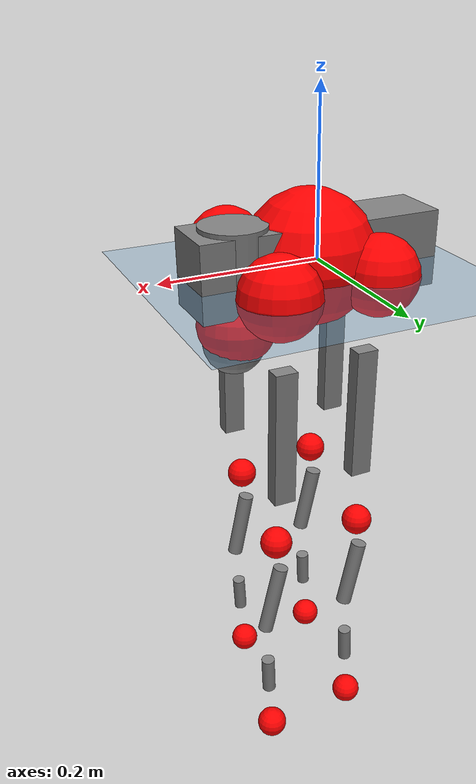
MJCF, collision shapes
<mujoco model="go2">
  <compiler angle="radian" assetdir="assets" balanceinertia="true" inertiafromgeom="false"/>

  <option timestep="0.005" density="1.2" viscosity="2e-05"/>

  <size nkey="1"/>

  <visual>
    <quality shadowsize="8192"/>
    <map shadowclip="0.5"/>
  </visual>

  <default>
    <default class="/">
      <geom contype="0" conaffinity="0" group="1" solref="-1000 -80"/>
      <site size="0.01 0.005 0.005" group="5"/>
      <general forcelimited="true" biastype="affine" gainprm="20" biasprm="0 -20 -0.5"/>
      <default class="go2">
        <joint armature="0.01" damping="0.01" frictionloss="0.2"/>
        <geom condim="1" margin="0.001"/>
        <default class="visual">
          <geom type="mesh" group="2"/>
        </default>
        <default class="collision">
          <geom group="3"/>
          <default class="foot">
            <geom size="0.022 0 0" condim="6" priority="1" friction="0.8 0.02 0.01" solimp="0.015 1 0.022"/>
          </default>
        </default>
        <default class="reward_collision_sphere">
          <geom group="5" rgba="1 0 0 1"/>
        </default>
      </default>
    </default>
  </default>

  <asset>
    <texture type="skybox" colorspace="auto" name="//unnamed_texture_0" builtin="gradient" rgb1="0.95 0.95 0.95" rgb2="0.95 0.95 0.95" width="100" height="600"/>
    <texture type="2d" colorspace="auto" name="texplane" builtin="checker" rgb1="0.345 0.575 0.748" rgb2="0.345 0.575 0.748" markrgb="1 1 1" width="512" height="512"/>
    <material name="MatPlane" class="/" texture="texplane" texuniform="true" texrepeat="2 2" specular="0.9"/>
    <material name="metal" class="/" rgba="0.9 0.95 0.95 1"/>
    <material name="black" class="/" rgba="0 0 0 1"/>
    <material name="white" class="/"/>
    <material name="gray" class="/" rgba="0.671705 0.692426 0.77427 1"/>
    <mesh name="base_0" class="/" file="base_0.obj"/>
    <mesh name="base_1" class="/" file="base_1.obj"/>
    <mesh name="base_2" class="/" file="base_2.obj"/>
    <mesh name="base_3" class="/" file="base_3.obj"/>
    <mesh name="base_4" class="/" file="base_4.obj"/>
    <mesh name="hip_0" class="/" file="hip_0.obj"/>
    <mesh name="hip_1" class="/" file="hip_1.obj"/>
    <mesh name="thigh_0" class="/" file="thigh_0.obj"/>
    <mesh name="thigh_1" class="/" file="thigh_1.obj"/>
    <mesh name="thigh_mirror_0" class="/" file="thigh_mirror_0.obj"/>
    <mesh name="thigh_mirror_1" class="/" file="thigh_mirror_1.obj"/>
    <mesh name="calf_0" class="/" file="calf_0.obj"/>
    <mesh name="calf_1" class="/" file="calf_1.obj"/>
    <mesh name="calf_mirror_0" class="/" file="calf_mirror_0.obj"/>
    <mesh name="calf_mirror_1" class="/" file="calf_mirror_1.obj"/>
    <mesh name="foot" class="/" file="foot.obj"/>
  </asset>

  <worldbody>
    <geom name="floor" class="/" size="100 100 0.125" type="plane" group="0" material="MatPlane"/>
    <light name="toplight_shadow" class="/" pos="0 0 5" dir="0.0990148 0.0990148 -0.990148" type="directional" ambient="0.04 0.04 0.04" diffuse="0.55 0.55 0.55" specular="0.12 0.12 0.12"/>
    <light name="toplight_fill" class="/" pos="0 0 5" dir="0.0990148 0.0990148 -0.990148" type="directional" castshadow="false" ambient="0.04 0.04 0.04" diffuse="0.3 0.3 0.3" specular="0.08 0.08 0.08"/>
    <body name="trunk" childclass="go2" pos="0.0178856 0.0136846 0.00976025" quat="0.999971 -0.00206042 -0.000549801 0.00731962">
      <inertial pos="0.0256899 0.00494771 -0.00367727" quat="-0.0322562 0.709834 -0.0378696 0.70261" mass="3.28275" diaginertia="0.000534739 0.00622091 0.144783"/>
      <joint name="//unnamed_joint_0" type="free" armature="0" damping="0" frictionloss="0"/>
      <geom name="//unnamed_geom_1" class="visual" material="black" mesh="base_0"/>
      <geom name="//unnamed_geom_2" class="visual" material="black" mesh="base_1"/>
      <geom name="//unnamed_geom_3" class="visual" material="black" mesh="base_2"/>
      <geom name="//unnamed_geom_4" class="visual" material="white" mesh="base_3"/>
      <geom name="//unnamed_geom_5" class="visual" material="gray" mesh="base_4"/>
      <geom name="trunk_1" class="collision" size="0.150353 0.0373684 0.0455615" type="box"/>
      <geom name="trunk_2" class="collision" size="0.0399662 0.0359696" pos="0.096056 0 0.0148204" type="cylinder"/>
      <geom name="trunk_3" class="collision" size="0.0375683" pos="0.0987523 0 -0.0889223"/>
      <geom name="//unnamed_geom_9" class="reward_collision_sphere" size="0.0799325"/>
      <geom name="//unnamed_geom_10" class="reward_collision_sphere" size="0.0479595" pos="0.0943708 0 -0.0666918"/>
      <site name="imu" pos="-0.0275565 -0.046969 0.103498" size="0.00799325"/>
      <camera name="track" pos="0 -1.15779 0" quat="0.707107 0.707107 0 0" mode="trackcom"/>
      <camera name="ego_camera" pos="0.105156 0 0.0666918" quat="-0.5 -0.5 0.5 0.5"/>
      <body name="FL_hip" pos="0.0777098 0.0397243 -0.00984979" quat="0.99996 0.003651 -0.00815701 -0.000210382">
        <inertial pos="0.0170023 0.0126044 0.0114411" quat="0.494762 0.482506 0.510217 0.511935" mass="0.296489" diaginertia="3.31042e-06 3.75479e-05 0.00233483"/>
        <joint name="FL_hip_joint" pos="0 0 0" axis="0.99949 -0.0102272 0.0302386" stiffness="0.0454173" range="-0.954307 1.36873" armature="0.00215934" damping="0.074039" frictionloss="0.0786752"/>
        <geom name="//unnamed_geom_11" class="visual" material="metal" mesh="hip_0"/>
        <geom name="//unnamed_geom_12" class="visual" material="gray" mesh="hip_1"/>
        <geom name="//unnamed_geom_13" class="collision" size="0.0367689 0.0159865" pos="0 0.0463117 0" quat="0.707107 0.707107 0 0" type="cylinder"/>
        <geom name="//unnamed_geom_14" class="reward_collision_sphere" size="0.0479595" pos="0 0.0405228 0"/>
        <body name="FL_thigh" pos="-0.000721478 0.0489933 -0.00953067" quat="0.999998 0.000975674 -0.00080164 0.00123438">
          <inertial pos="-0.0190968 -0.0181379 -0.0650669" quat="0.836947 0.0903473 -0.0377235 0.538455" mass="0.62445" diaginertia="2.66375e-05 0.000330034 0.00680724"/>
          <joint name="FL_thigh_joint" pos="0 0 0" axis="-0.0535246 0.998553 0.00527673" range="-1.26469 3.19844" armature="0.00254461" damping="0.0979551" frictionloss="0.0711204"/>
          <geom name="//unnamed_geom_15" class="visual" material="metal" mesh="thigh_0"/>
          <geom name="//unnamed_geom_16" class="visual" material="gray" mesh="thigh_1"/>
          <geom name="//unnamed_geom_17" class="collision" size="0.0851281 0.00979173 0.0135885" pos="0 0 -0.157837" quat="0.707107 0 0.707107 0" type="box"/>
          <body name="FL_calf" pos="0.00286206 -0.00728456 -0.310928" quat="0.999979 -0.00121441 -0.00631768 -0.0010701">
            <inertial pos="-0.0101369 -0.0118055 -0.19524" quat="0.738293 0.0678206 -0.0259678 0.670559" mass="0.109328" diaginertia="7.12504e-06 8.09128e-05 0.000437975"/>
            <joint name="FL_calf_joint" pos="0 0 0" axis="-0.0366918 0.999307 -0.00625744" range="-2.6228 -0.523718" armature="0.0132637" damping="0.00354297" frictionloss="0.208113"/>
            <geom name="//unnamed_geom_18" class="visual" material="gray" mesh="calf_0"/>
            <geom name="//unnamed_geom_19" class="visual" material="black" mesh="calf_1"/>
            <geom name="FL_calf0" class="collision" size="0.0095919 0.0479595" pos="0.00269631 0 -0.0889223" quat="0.994493 0 -0.104807 0" type="cylinder"/>
            <geom name="//unnamed_geom_21" class="collision" size="0.00879257 0.0259781" pos="0.00674077 0 -0.219342" quat="0.999688 0 0.0249974 0" type="cylinder"/>
            <geom name="//unnamed_geom_22" class="visual" pos="0 0 -0.315674" quat="1 0 0 0" material="black" mesh="foot"/>
            <geom name="FL_foot" class="foot" size="0.0125274" pos="-0.000674077 0 -0.315674"/>
            <geom name="//unnamed_geom_24" class="reward_collision_sphere" size="0.0199831"/>
            <geom name="//unnamed_geom_25" class="reward_collision_sphere" size="0.0199831" pos="-0.000674077 0 -0.315674"/>
            <site name="FL_foot" class="foot" pos="-0.000674077 0 -0.315674" size="0.00799325"/>
          </body>
        </body>
      </body>
      <body name="FR_hip" pos="0.0684799 -0.0427427 -0.00230329" quat="0.999986 -0.0039324 0.00264126 0.00250058">
        <inertial pos="-0.0167498 -0.00925275 -0.000441735" quat="0.515169 0.492769 0.497288 0.494454" mass="0.215726" diaginertia="3.44213e-06 3.50952e-05 0.00330363"/>
        <joint name="FR_hip_joint" pos="0 0 0" axis="0.999926 -0.00409606 0.011487" stiffness="0.0355526" range="-1.28698 0.978993" armature="0.0156069" damping="0.0261748" frictionloss="0.0152974"/>
        <geom name="//unnamed_geom_26" class="visual" pos="0 -7.8678e-09 -3.37466e-07" quat="4.63268e-05 1 0 0" material="metal" mesh="hip_0"/>
        <geom name="//unnamed_geom_27" class="visual" pos="0 -1.27546e-08 8.34683e-07" quat="4.63268e-05 1 0 0" material="gray" mesh="hip_1"/>
        <geom name="//unnamed_geom_28" class="collision" size="0.0367689 0.0159865" pos="0 -0.0463117 0" quat="0.707107 0.707107 0 0" type="cylinder"/>
        <geom name="//unnamed_geom_29" class="reward_collision_sphere" size="0.0479595" pos="0 -0.0405228 0"/>
        <body name="FR_thigh" pos="-0.00440581 -0.0470185 -0.0164747" quat="0.999962 -0.000830794 -0.00699961 -0.0051886">
          <inertial pos="0.0127179 0.0315187 -0.0401369" quat="0.534787 -0.0363807 0.101843 0.838038" mass="0.812948" diaginertia="2.78784e-05 0.000479208 0.00834866"/>
          <joint name="FR_thigh_joint" pos="0 0 0" axis="-0.0251763 -0.999464 0.0209343" stiffness="0.025665" range="-3.32018 1.76128" armature="0.00878462" damping="0.0153774" frictionloss="0.078164"/>
          <geom name="//unnamed_geom_30" class="visual" material="metal" mesh="thigh_mirror_0"/>
          <geom name="//unnamed_geom_31" class="visual" material="gray" mesh="thigh_mirror_1"/>
          <geom name="//unnamed_geom_32" class="collision" size="0.0851281 0.00979173 0.0135885" pos="0 0 -0.157837" quat="0.707107 0 0.707107 0" type="box"/>
          <body name="FR_calf" pos="-0.0132417 0.000503898 -0.319491" quat="1 -0.000113177 0.000118765 0.000747984">
            <inertial pos="-0.00933053 0.00215945 -0.201347" quat="0.720099 -0.0232875 0.00123224 0.69348" mass="0.0894258" diaginertia="4.18908e-06 9.01979e-05 0.000290293"/>
            <joint name="FR_calf_joint" pos="0 0 0" axis="0.0751567 -0.997167 0.0029635" stiffness="0.0612738" range="0.798702 2.83359" armature="0.00622243" damping="0" frictionloss="0.0971674"/>
            <geom name="//unnamed_geom_33" class="visual" material="gray" mesh="calf_mirror_0"/>
            <geom name="//unnamed_geom_34" class="visual" material="black" mesh="calf_mirror_1"/>
            <geom name="FR_calf0" class="collision" size="0.0103912 0.0479595" pos="0.00337039 0 -0.0889223" quat="0.995004 0 -0.0998334 0" type="cylinder"/>
            <geom name="//unnamed_geom_36" class="collision" size="0.00879257 0.0259781" pos="0.00674077 0 -0.219342" quat="0.999688 0 0.0249974 0" type="cylinder"/>
            <geom name="//unnamed_geom_37" class="visual" pos="0 0 -0.315674" quat="1 0 0 0" material="black" mesh="foot"/>
            <geom name="FR_foot" class="foot" size="0.0174585" pos="-0.000674077 0 -0.315674"/>
            <geom name="//unnamed_geom_39" class="reward_collision_sphere" size="0.0199831"/>
            <geom name="//unnamed_geom_40" class="reward_collision_sphere" size="0.0199831" pos="-0.000674077 0 -0.315674"/>
            <site name="FR_foot" class="foot" pos="-0.000674077 0 -0.315674" size="0.00799325"/>
          </body>
        </body>
      </body>
      <body name="RL_hip" pos="-0.0585694 0.020233 -0.0121112" quat="0.999952 -0.00179915 -0.00963943 -0.000535707">
        <inertial pos="-0.0161047 0.00831843 -0.00542434" quat="0.508448 0.498558 0.495092 0.4978" mass="0.296973" diaginertia="3.5987e-06 3.01617e-05 0.00356702"/>
        <joint name="RL_hip_joint" pos="0 0 0" axis="-0.999326 0.0354692 0.00943252" range="-0.912065 0.929698" armature="0.00760996" damping="0.00805952" frictionloss="0.0826445"/>
        <geom name="//unnamed_geom_41" class="visual" pos="9.97477e-09 0 1.95528e-06" quat="4.63268e-05 0 1 0" material="metal" mesh="hip_0"/>
        <geom name="//unnamed_geom_42" class="visual" pos="1.61703e-08 0 1.73406e-06" quat="4.63268e-05 0 1 0" material="gray" mesh="hip_1"/>
        <geom name="//unnamed_geom_43" class="collision" size="0.0367689 0.0159865" pos="0 0.0463117 0" quat="0.707107 0.707107 0 0" type="cylinder"/>
        <geom name="//unnamed_geom_44" class="reward_collision_sphere" size="0.0479595" pos="0 0.0405228 0"/>
        <body name="RL_thigh" pos="0.0172738 0.0450405 -0.0141174" quat="0.999962 0.00300469 0.00422064 0.00700766">
          <inertial pos="0.00232749 -0.00612807 -0.0416976" quat="0.870582 0.0635208 0.000347039 0.487905" mass="0.709449" diaginertia="2.33786e-05 0.000454021 0.00562422"/>
          <joint name="RL_thigh_joint" pos="0 0 0" axis="-0.00397553 0.999955 0.00856819" range="-0.401941 4.59984" armature="0.0126317" damping="0.098442" frictionloss="0.233603"/>
          <geom name="//unnamed_geom_45" class="visual" material="metal" mesh="thigh_0"/>
          <geom name="//unnamed_geom_46" class="visual" material="gray" mesh="thigh_1"/>
          <geom name="//unnamed_geom_47" class="collision" size="0.0851281 0.00979173 0.0135885" pos="0 0 -0.157837" quat="0.707107 0 0.707107 0" type="box"/>
          <body name="RL_calf" pos="-0.00880423 -0.00641102 -0.32667" quat="0.999999 -0.000741851 -0.0011817 0.000946417">
            <inertial pos="0.00304397 0.00182935 -0.22166" quat="0.708578 0.00843468 0.00108502 0.705582" mass="0.124051" diaginertia="6.44913e-06 8.72429e-05 0.000387469"/>
            <joint name="RL_calf_joint" pos="0 0 0" axis="-0.00024164 0.999922 -0.012491" stiffness="0.0227381" range="-2.56479 -0.828444" armature="0.0129249" damping="0.0851321" frictionloss="0.189429"/>
            <geom name="//unnamed_geom_48" class="visual" material="gray" mesh="calf_0"/>
            <geom name="//unnamed_geom_49" class="visual" material="black" mesh="calf_1"/>
            <geom name="RL_calf0" class="collision" size="0.0103912 0.0479595" pos="0.00337039 0 -0.0889223" quat="0.995004 0 -0.0998334 0" type="cylinder"/>
            <geom name="//unnamed_geom_51" class="collision" size="0.00879257 0.0259781" pos="0.00674077 0 -0.219342" quat="0.999688 0 0.0249974 0" type="cylinder"/>
            <geom name="//unnamed_geom_52" class="visual" pos="0 0 -0.315674" quat="1 0 0 0" material="black" mesh="foot"/>
            <geom name="RL_foot" class="foot" size="0.00861597" pos="-0.000674077 0 -0.315674"/>
            <geom name="//unnamed_geom_54" class="reward_collision_sphere" size="0.0199831"/>
            <geom name="//unnamed_geom_55" class="reward_collision_sphere" size="0.0199831" pos="-0.000674077 0 -0.315674"/>
            <site name="RL_foot" class="foot" pos="-0.000674077 0 -0.315674" size="0.00799325"/>
          </body>
        </body>
      </body>
      <body name="RR_hip" pos="-0.0637306 -0.00944135 -0.0149592" quat="0.999976 -0.00546632 -0.003109 0.00294969">
        <inertial pos="0.0016275 -0.0161067 -0.000925734" quat="0.555276 0.499881 0.495839 0.442641" mass="0.356103" diaginertia="3.40311e-06 3.39671e-05 0.0040226"/>
        <joint name="RR_hip_joint" pos="0 0 0" axis="-0.999446 -0.0204819 0.0262171" range="-1.17806 0.994722" armature="4.60576e-05" damping="0" frictionloss="0.289016"/>
        <geom name="//unnamed_geom_56" class="visual" pos="-9.9664e-09 -7.8678e-09 2.29275e-06" quat="2.14617e-09 4.63268e-05 4.63268e-05 -1" material="metal" mesh="hip_0"/>
        <geom name="//unnamed_geom_57" class="visual" pos="-1.6191e-08 -1.27546e-08 8.99376e-07" quat="2.14617e-09 4.63268e-05 4.63268e-05 -1" material="gray" mesh="hip_1"/>
        <geom name="//unnamed_geom_58" class="collision" size="0.0367689 0.0159865" pos="0 -0.0463117 0" quat="0.707107 0.707107 0 0" type="cylinder"/>
        <geom name="//unnamed_geom_59" class="reward_collision_sphere" size="0.0479595" pos="0 -0.0405228 0"/>
        <body name="RR_thigh" pos="-0.00339342 -0.0485583 0.0153886" quat="0.999986 0.000152467 0.00302001 -0.0043096">
          <inertial pos="0.000189272 0.0238736 -0.0527161" quat="0.554047 -0.012323 0.0940629 0.827063" mass="0.748244" diaginertia="3.26044e-05 0.000439171 0.00851059"/>
          <joint name="RR_thigh_joint" pos="0 0 0" axis="-0.00394688 -0.99938 -0.0349884" stiffness="0.0671318" range="-4.19993 0.273644" armature="0.00377944" damping="0.0400881" frictionloss="0.224115"/>
          <geom name="//unnamed_geom_60" class="visual" material="metal" mesh="thigh_mirror_0"/>
          <geom name="//unnamed_geom_61" class="visual" material="gray" mesh="thigh_mirror_1"/>
          <geom name="//unnamed_geom_62" class="collision" size="0.0851281 0.00979173 0.0135885" pos="0 0 -0.157837" quat="0.707107 0 0.707107 0" type="box"/>
          <body name="RR_calf" pos="0.0199921 -0.0142545 -0.314182" quat="0.999994 -0.00112076 -0.00314924 -0.000518788">
            <inertial pos="-0.017094 0.00147014 -0.221376" quat="0.687122 -0.0461971 -0.0113958 0.724982" mass="0.115831" diaginertia="6.78815e-06 0.000137362 0.000389391"/>
            <joint name="RR_calf_joint" pos="0 0 0" axis="-0.0332615 -0.999426 0.00644704" range="0.556402 2.33242" armature="0.0146329" damping="0" frictionloss="0.0941515"/>
            <geom name="//unnamed_geom_63" class="visual" material="gray" mesh="calf_mirror_0"/>
            <geom name="//unnamed_geom_64" class="visual" material="black" mesh="calf_mirror_1"/>
            <geom name="RR_calf0" class="collision" size="0.0103912 0.0479595" pos="0.00337039 0 -0.0889223" quat="0.995004 0 -0.0998334 0" type="cylinder"/>
            <geom name="//unnamed_geom_66" class="collision" size="0.00879257 0.0259781" pos="0.00674077 0 -0.219342" quat="0.999688 0 0.0249974 0" type="cylinder"/>
            <geom name="//unnamed_geom_67" class="visual" pos="0 0 -0.315674" quat="1 0 0 0" material="black" mesh="foot"/>
            <geom name="RR_foot" class="foot" size="0.0192975" pos="-0.000674077 0 -0.315674"/>
            <geom name="//unnamed_geom_69" class="reward_collision_sphere" size="0.0199831"/>
            <geom name="//unnamed_geom_70" class="reward_collision_sphere" size="0.0199831" pos="-0.000674077 0 -0.315674"/>
            <site name="RR_foot" class="foot" pos="-0.000674077 0 -0.315674" size="0.00799325"/>
          </body>
        </body>
      </body>
    </body>
  </worldbody>

  <contact>
    <pair class="/" geom1="floor" geom2="FL_foot" name="//unnamed_contact_0"/>
    <pair class="/" geom1="floor" geom2="FR_foot" name="//unnamed_contact_1"/>
    <pair class="/" geom1="floor" geom2="RL_foot" name="//unnamed_contact_2"/>
    <pair class="/" geom1="floor" geom2="RR_foot" name="//unnamed_contact_3"/>
  </contact>

  <actuator>
    <general name="FL_hip" class="/" joint="FL_hip_joint" forcerange="-22.2121 22.2121" gainprm="15.9175" biasprm="0 -15.9175 -0.369693"/>
    <general name="FL_thigh" class="/" joint="FL_thigh_joint" forcerange="-27.0684 27.0684" gainprm="15.9175" biasprm="0 -15.9175 -0.369693"/>
    <general name="FL_calf" class="/" joint="FL_calf_joint" forcerange="-35.2362 35.2362" gainprm="15.9175" biasprm="0 -15.9175 -0.369693"/>
    <general name="FR_hip" class="/" joint="FR_hip_joint" forcerange="-5.50348 5.50348" gainprm="15.9175" biasprm="0 -15.9175 -0.369693"/>
    <general name="FR_thigh" class="/" joint="FR_thigh_joint" forcerange="-19.9932 19.9932" gainprm="15.9175" biasprm="0 -15.9175 -0.369693"/>
    <general name="FR_calf" class="/" joint="FR_calf_joint" forcerange="-55.7966 55.7966" gainprm="15.9175" biasprm="0 -15.9175 -0.369693"/>
    <general name="RL_hip" class="/" joint="RL_hip_joint" forcerange="-22.9228 22.9228" gainprm="15.9175" biasprm="0 -15.9175 -0.369693"/>
    <general name="RL_thigh" class="/" joint="RL_thigh_joint" forcerange="-23.0209 23.0209" gainprm="15.9175" biasprm="0 -15.9175 -0.369693"/>
    <general name="RL_calf" class="/" joint="RL_calf_joint" forcerange="-30.3733 30.3733" gainprm="15.9175" biasprm="0 -15.9175 -0.369693"/>
    <general name="RR_hip" class="/" joint="RR_hip_joint" forcerange="-14.8683 14.8683" gainprm="15.9175" biasprm="0 -15.9175 -0.369693"/>
    <general name="RR_thigh" class="/" joint="RR_thigh_joint" forcerange="-25.1645 25.1645" gainprm="15.9175" biasprm="0 -15.9175 -0.369693"/>
    <general name="RR_calf" class="/" joint="RR_calf_joint" forcerange="-13.3149 13.3149" gainprm="15.9175" biasprm="0 -15.9175 -0.369693"/>
  </actuator>

  <sensor>
    <gyro site="imu" name="imu_angular_velocity"/>
    <velocimeter site="imu" name="imu_linear_velocity"/>
    <framelinvel objtype="site" objname="FL_foot" name="FL_foot_global_linear_velocity"/>
    <framelinvel objtype="site" objname="FR_foot" name="FR_foot_global_linear_velocity"/>
    <framelinvel objtype="site" objname="RL_foot" name="RL_foot_global_linear_velocity"/>
    <framelinvel objtype="site" objname="RR_foot" name="RR_foot_global_linear_velocity"/>
  </sensor>

  <keyframe>
    <key name="home" qpos="0 0 0.325 1 0 0 0 0.1 0.8 -1.5 -0.1 -0.8 1.5 -0.1 0.8 -1.5 0.1 -0.8 1.5"/>
  </keyframe>
</mujoco>
